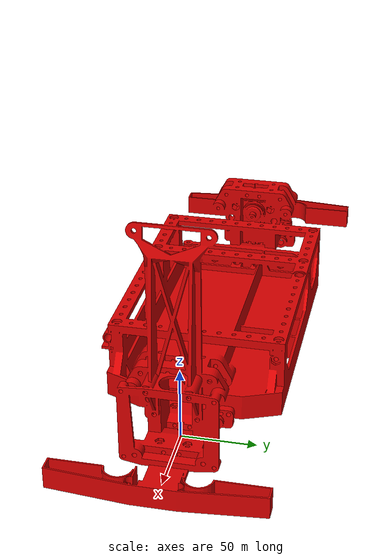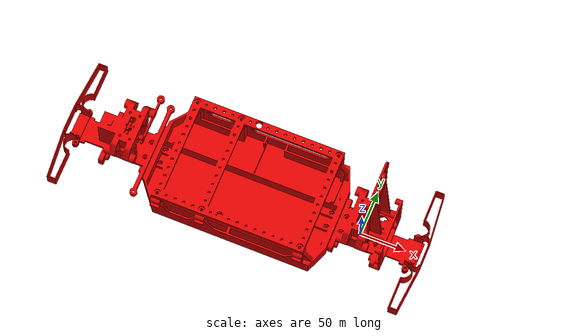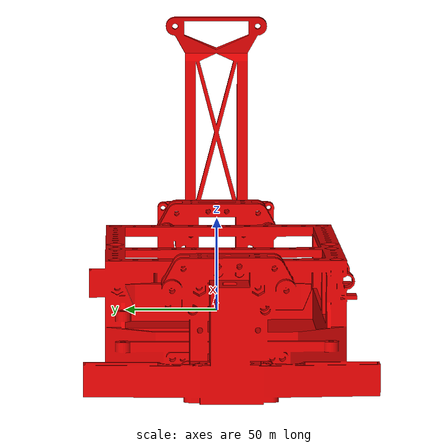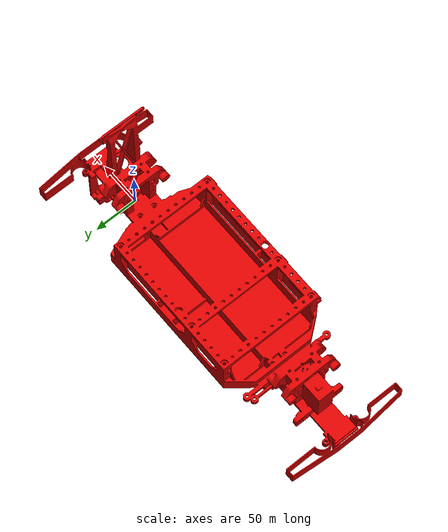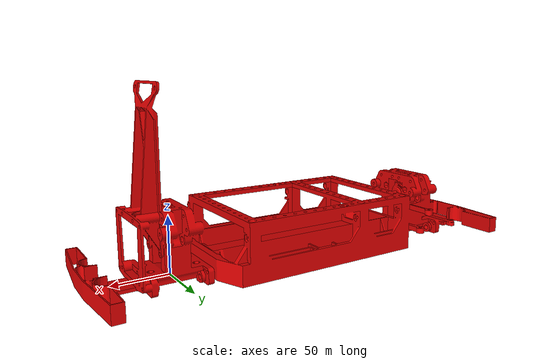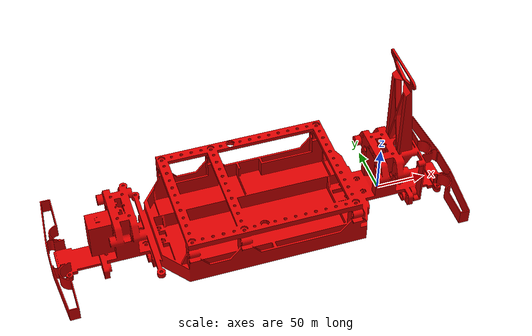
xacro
<?xml version="1.0"?>
<robot xmlns:xacro="http://ros.org/wiki/xacro" name="test_car">

  <!-- Import materials and plugins -->
  <xacro:include filename="$(find car2_gazebo)/models/materials.xacro"/>
  <xacro:include filename="$(find car2_gazebo)/models/inertia_tensors.xacro"/>

  <link name="base_link"/>

  <xacro:property name="plate_x"    value="0.26" />
  <xacro:property name="plate_y"    value="0.08" />
  <xacro:property name="plate_z"    value="0.02" />

  <!-- Chassis -->
  <joint name="chassis_joint" type="fixed">
      <origin xyz="0 0 0" rpy="0 0 0"/>
      <parent link="base_link"/>
      <child link="chassis_link"/>
  </joint>
  <link name="chassis_link">
      <visual>
          <origin xyz="${plate_x/2} 0 -${plate_z}" rpy="0 0 0"/>
          <geometry>
              <mesh scale="1 1 1" filename="file://$(find car2_gazebo)/models/platforms/car/body/meshes/car.dae"/>
          </geometry>
          <material name="ChassisRed">
              <color rgba="0.851 0.0 0.0 1.0"/>
          </material>
      </visual>
      <collision>
          <origin xyz="0 0 -${plate_z}" rpy="0 0 0"/>
          <geometry>
              <box size="${plate_x} ${plate_y} ${plate_z}"/>
          </geometry>
      </collision>
      <xacro:box_inertial_with_origin x="${plate_x}" y="${plate_y}"  z="${plate_z}" mass="1.074">
          <origin xyz="0 0 -${plate_z}" />
      </xacro:box_inertial_with_origin>
  </link>

</robot>

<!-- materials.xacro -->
<robot>

  <material name="black">
    <color rgba="0.0 0.0 0.0 1.0"/>
  </material>

  <material name="blue">
    <color rgba="0.0 0.0 0.8 1.0"/>
  </material>

  <material name="light_blue">
    <color rgba="${100/255} ${134/255} ${213/255} 1.0"/>
  </material>

  <material name="green">
    <color rgba="0.0 0.8 0.0 1.0"/>
  </material>

  <material name="light_grey">
    <color rgba="0.5 0.5 0.5 1.0"/>
  </material>

  <material name="grey">
    <color rgba="0.2 0.2 0.2 1.0"/>
  </material>

  <material name="orange">
    <color rgba="${255/255} ${108/255} ${10/255} 1.0"/>
  </material>

  <material name="brown">
    <color rgba="${222/255} ${207/255} ${195/255} 1.0"/>
  </material>

  <material name="red">
    <color rgba="0.8 0.0 0.0 1.0"/>
  </material>

  <material name="white">
    <color rgba="1.0 1.0 1.0 1.0"/>
  </material>

</robot>
